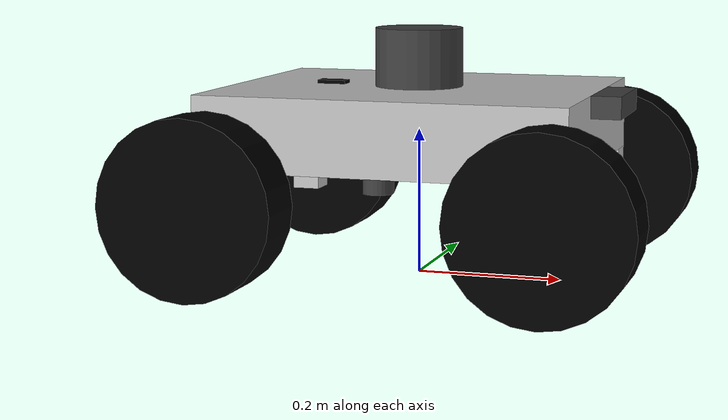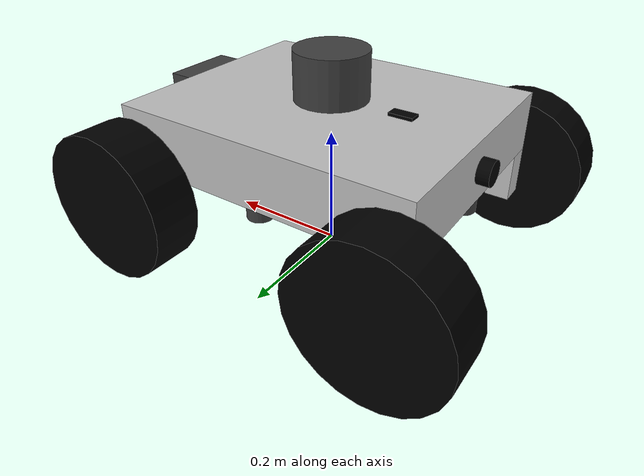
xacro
<?xml version="1.0"?>
<robot xmlns:xacro="http://www.ros.org/wiki/xacro" name="ddbot">

    <xacro:include filename="$(find ddbot_description)/urdf/ddbot.xacro" />

    <link name="base_footprint" />
    <joint name="base_footprint_joint" type="fixed">
        <origin xyz="0.0 0.0 ${base_h/2+wheel_mount_h/2+wheel_r}" rpy="0.0 0.0 0.0" />
        <parent link="base_footprint" />
        <child link="base_link" />
    </joint>

    <xacro:include filename="$(find ddbot_gazebo)/urdf/ddbot.gazebo.xacro" />

</robot>

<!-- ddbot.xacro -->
<robot xmlns:xacro="http://www.ros.org/wiki/xacro" name="ddbot">

    <!-- Link Properties Macros -->
    <xacro:include filename="$(find ddbot_description)/urdf/link_properties.xacro" />

    <!-- Base Link -->
    <xacro:property name="base_m" value="5.0" />
    <xacro:property name="base_l" value="0.5" />
    <xacro:property name="base_w" value="0.4" />
    <xacro:property name="base_h" value="0.1" />

    <link name="base_link">
        <xacro:box_link m="${base_m}" l="${base_l}" w="${base_w}" h="${base_h}"
            material="light_grey" />
    </link>

    <!-- Wheel Mounts -->
    <xacro:property name="wheel_mount_m" value="0.5" />
    <xacro:property name="wheel_mount_l" value="0.04" />
    <xacro:property name="wheel_mount_w" value="0.04" />
    <xacro:property name="wheel_mount_h" value="0.08" />
    <xacro:property name="wheel_mount_dx" value="${base_l/2-wheel_mount_l/2}" />
    <xacro:property name="wheel_mount_dy" value="${base_w/2-wheel_mount_w/2}" />
    <xacro:property name="wheel_mount_dz" value="${base_h/2+wheel_mount_h/2}" />

    <link name="wheel_mount_fl">
        <xacro:box_link m="${wheel_mount_m}" l="${wheel_mount_l}" w="${wheel_mount_w}"
            h="${wheel_mount_h}"
            material="light_grey" />
    </link>
    <joint name="wheel_mount_fl_joint" type="fixed">
        <origin xyz="${wheel_mount_dx} ${wheel_mount_dy} ${-wheel_mount_dz}" rpy="0.0 0.0 0.0" />
        <parent link="base_link" />
        <child link="wheel_mount_fl" />
    </joint>

    <link name="wheel_mount_rl">
        <xacro:box_link m="${wheel_mount_m}" l="${wheel_mount_l}" w="${wheel_mount_w}"
            h="${wheel_mount_h}"
            material="light_grey" />
    </link>
    <joint name="wheel_mount_rl_joint" type="fixed">
        <origin xyz="${-wheel_mount_dx} ${wheel_mount_dy} ${-wheel_mount_dz}" rpy="0.0 0.0 0.0" />
        <parent link="base_link" />
        <child link="wheel_mount_rl" />
    </joint>

    <link name="wheel_mount_rr">
        <xacro:box_link m="${wheel_mount_m}" l="${wheel_mount_l}" w="${wheel_mount_w}"
            h="${wheel_mount_h}"
            material="light_grey" />
    </link>
    <joint name="wheel_mount_rr_joint" type="fixed">
        <origin xyz="${-wheel_mount_dx} ${-wheel_mount_dy} ${-wheel_mount_dz}" rpy="0.0 0.0 0.0" />
        <parent link="base_link" />
        <child link="wheel_mount_rr" />
    </joint>

    <link name="wheel_mount_fr">
        <xacro:box_link m="${wheel_mount_m}" l="${wheel_mount_l}" w="${wheel_mount_w}"
            h="${wheel_mount_h}"
            material="light_grey" />
    </link>
    <joint name="wheel_mount_fr_joint" type="fixed">
        <origin xyz="${wheel_mount_dx} ${-wheel_mount_dy} ${-wheel_mount_dz}" rpy="0.0 0.0 0.0" />
        <parent link="base_link" />
        <child link="wheel_mount_fr" />
    </joint>

    <!-- Wheels -->
    <xacro:property name="wheel_m" value="0.4" />
    <xacro:property name="wheel_r" value="0.12" />
    <xacro:property name="wheel_l" value="0.08" />

    <link name="wheel_fl">
        <xacro:cylinder_link m="${wheel_m}" r="${wheel_r}" l="${wheel_l}" material="black" />
    </link>
    <joint name="wheel_fl_joint" type="continuous">
        <origin xyz="0.0 ${wheel_mount_w/2+wheel_l/2} 0.0" rpy="${-pi/2} 0.0 0.0" />
        <parent link="wheel_mount_fl" />
        <child link="wheel_fl" />
        <axis xyz="0.0 0.0 1.0" />
    </joint>

    <link name="wheel_rl">
        <xacro:cylinder_link m="${wheel_m}" r="${wheel_r}" l="${wheel_l}" material="black" />
    </link>
    <joint name="wheel_rl_joint" type="continuous">
        <origin xyz="0.0 ${wheel_mount_w/2+wheel_l/2} 0.0" rpy="${-pi/2} 0.0 0.0" />
        <parent link="wheel_mount_rl" />
        <child link="wheel_rl" />
        <axis xyz="0.0 0.0 1.0" />
    </joint>

    <link name="wheel_rr">
        <xacro:cylinder_link m="${wheel_m}" r="${wheel_r}" l="${wheel_l}" material="black" />
    </link>
    <joint name="wheel_rr_joint" type="continuous">
        <origin xyz="0.0 -${wheel_mount_w/2+wheel_l/2} 0.0" rpy="${-pi/2} 0.0 0.0" />
        <parent link="wheel_mount_rr" />
        <child link="wheel_rr" />
        <axis xyz="0.0 0.0 1.0" />
    </joint>

    <link name="wheel_fr">
        <xacro:cylinder_link m="${wheel_m}" r="${wheel_r}" l="${wheel_l}" material="black" />
    </link>
    <joint name="wheel_fr_joint" type="continuous">
        <origin xyz="0.0 -${wheel_mount_w/2+wheel_l/2} 0.0" rpy="${-pi/2} 0.0 0.0" />
        <parent link="wheel_mount_fr" />
        <child link="wheel_fr" />
        <axis xyz="0.0 0.0 1.0" />
    </joint>

    <!-- Lidar -->
    <xacro:property name="lidar_m" value="0.4" />
    <xacro:property name="lidar_r" value="0.06" />
    <xacro:property name="lidar_l" value="0.08" />

    <link name="lidar">
        <xacro:cylinder_link m="${lidar_m}" r="${lidar_r}" l="${lidar_l}" material="dark_grey" />
    </link>
    <joint name="lidar_joint" type="fixed">
        <origin xyz="0.0 0.0 ${base_h/2+lidar_l/2}" rpy="0.0 0.0 0.0" />
        <parent link="base_link" />
        <child link="lidar" />
    </joint>

    <!-- RGBD Camera -->
    <xacro:property name="rgbd_camera_m" value="0.25" />
    <xacro:property name="rgbd_camera_l" value="0.04" />
    <xacro:property name="rgbd_camera_w" value="0.12" />
    <xacro:property name="rgbd_camera_h" value="0.03" />

    <link name="rgbd_camera">
        <xacro:box_link m="${rgbd_camera_m}" l="${rgbd_camera_l}" w="${rgbd_camera_w}"
            h="${rgbd_camera_h}"
            material="dark_grey" />
    </link>
    <joint name="rgbd_camera_joint" type="fixed">
        <origin xyz="${base_l/2+rgbd_camera_l/2} 0.0 ${base_h/2-rgbd_camera_h/2}" rpy="0.0 0.0 0.0" />
        <parent link="base_link" />
        <child link="rgbd_camera" />
    </joint>

    <link name="rgbd_camera_frame" />
    <joint name="rgbd_camera_frame_joint" type="fixed">
        <origin xyz="${rgbd_camera_l/2} 0.0 0.0" rpy="0.0 0.0 0.0" />
        <parent link="rgbd_camera" />
        <child link="rgbd_camera_frame" />
    </joint>

    <!-- GPS Tracker -->
    <xacro:property name="gps_tracker_m" value="0.1" />
    <xacro:property name="gps_tracker_r" value="0.02" />
    <xacro:property name="gps_tracker_l" value="0.02" />

    <link name="gps_tracker">
        <xacro:cylinder_link m="${gps_tracker_m}" r="${gps_tracker_r}" l="${gps_tracker_l}"
            material="black" />
    </link>
    <joint name="gps_tracker_joint" type="fixed">
        <origin xyz="-${base_l/2+gps_tracker_l/2} 0.0 0.0" rpy="0.0 -${pi/2} 0.0" />
        <parent link="base_link" />
        <child link="gps_tracker" />
    </joint>

    <!-- Ultrasonic Sensors -->
    <xacro:property name="us_sensor_m" value="0.05" />
    <xacro:property name="us_sensor_r" value="0.02" />
    <xacro:property name="us_sensor_l" value="0.02" />

    <link name="us_sensor_front">
        <xacro:cylinder_link m="${us_sensor_m}" r="${us_sensor_r}" l="${us_sensor_l}"
            material="dark_grey" />
    </link>
    <joint name="us_sensor_front_joint" type="fixed">
        <origin xyz="${base_l/2-us_sensor_r} 0.0 -${base_h/2+us_sensor_l/2}" rpy="0.0 0.0 0.0" />
        <parent link="base_link" />
        <child link="us_sensor_front" />
    </joint>

    <link name="us_sensor_left">
        <xacro:cylinder_link m="${us_sensor_m}" r="${us_sensor_r}" l="${us_sensor_l}"
            material="dark_grey" />
    </link>
    <joint name="us_sensor_left_joint" type="fixed">
        <origin xyz="0.0 ${base_w/2-us_sensor_r} -${base_h/2+us_sensor_l/2}" rpy="0.0 0.0 ${pi/2}" />
        <parent link="base_link" />
        <child link="us_sensor_left" />
    </joint>

    <link name="us_sensor_rear">
        <xacro:cylinder_link m="${us_sensor_m}" r="${us_sensor_r}" l="${us_sensor_l}"
            material="dark_grey" />
    </link>
    <joint name="us_sensor_rear_joint" type="fixed">
        <origin xyz="-${base_l/2-us_sensor_r} 0.0 -${base_h/2+us_sensor_l/2}" rpy="0.0 0.0 ${pi}" />
        <parent link="base_link" />
        <child link="us_sensor_rear" />
    </joint>

    <link name="us_sensor_right">
        <xacro:cylinder_link m="${us_sensor_m}" r="${us_sensor_r}" l="${us_sensor_l}"
            material="dark_grey" />
    </link>
    <joint name="us_sensor_right_joint" type="fixed">
        <origin xyz="0.0 -${base_w/2-us_sensor_r} -${base_h/2+us_sensor_l/2}" rpy="0.0 0.0 -${pi/2}" />
        <parent link="base_link" />
        <child link="us_sensor_right" />
    </joint>

    <!-- IMU Sensor -->
    <xacro:property name="imu_m" value="0.05" />
    <xacro:property name="imu_l" value="0.04" />
    <xacro:property name="imu_w" value="0.02" />
    <xacro:property name="imu_h" value="0.005" />

    <link name="imu">
        <xacro:box_link m="${imu_m}" l="${imu_l}" w="${imu_w}" h="${imu_h}" material="black" />
    </link>
    <joint name="imu_joint" type="fixed">
        <origin xyz="-${base_l/4} 0.0 ${base_h/2+imu_h/2}" rpy="0.0 0.0 0.0" />
        <parent link="base_link" />
        <child link="imu" />
    </joint>

</robot>

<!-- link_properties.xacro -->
<robot xmlns:xacro="http://www.ros.org/wiki/xacro">

    <!-- Materials -->
    <xacro:include filename="$(find ddbot_description)/urdf/materials.xacro" />

    <!-- Box Link Properties -->
    <xacro:macro name="__box_property" params="size">
        <origin xyz="0.0 0.0 0.0" rpy="0.0 0.0 0.0" />

        <geometry>
            <box size="${size}" />
        </geometry>
    </xacro:macro>

    <xacro:macro name="box_link" params="m l w h material='grey'">
        <collision>
            <xacro:__box_property size="${l} ${w} ${h}" />
        </collision>

        <visual>
            <xacro:__box_property size="${l} ${w} ${h}" />
            <material name="${material}" />
        </visual>

        <inertial>
            <origin xyz="0.0 0.0 0.0" rpy="0.0 0.0 0.0" />
            <mass value="${m}" />
            <inertia
                ixx="${m * (w * w + h * h) / 12}" ixy="0" ixz="0"
                iyy="${m * (l * l + h * h) / 12}"
                iyz="0" izz="${m * (w * w + l * l) / 12}" />
        </inertial>
    </xacro:macro>

    <!-- Cylinder Link Properties -->
    <xacro:macro name="__cylinder_property" params="r l">
        <origin xyz="0.0 0.0 0.0" rpy="0.0 0.0 0.0" />

        <geometry>
            <cylinder radius="${r}" length="${l}" />
        </geometry>
    </xacro:macro>

    <xacro:macro name="cylinder_link" params="m r l material='grey'">
        <collision>
            <xacro:__cylinder_property r="${r}" l="${l}" />
        </collision>

        <visual>
            <xacro:__cylinder_property r="${r}" l="${l}" />
            <material name="${material}" />
        </visual>

        <inertial>
            <origin xyz="0.0 0.0 0.0" rpy="0.0 0.0 0.0" />
            <mass value="${m}" />
            <inertia ixx="${m * (3 * r * r + l * l) / 12}" ixy="0" ixz="0"
                iyy="${m * (3 * r * r + l * l) / 12}" iyz="0" izz="${m * r * r / 2}" />
        </inertial>
    </xacro:macro>

    <!-- Sphere Link Properties -->
    <xacro:macro name="__sphere_property" params="r">
        <origin xyz="0.0 0.0 0.0" rpy="0.0 0.0 0.0" />

        <geometry>
            <sphere radius="${r}" />
        </geometry>
    </xacro:macro>

    <xacro:macro name="sphere_link" params="m r material='grey'">
        <collision>
            <xacro:__sphere_property radius="${r}" />
        </collision>

        <visual>
            <xacro:__sphere_property radius="${r}" />
            <material name="${material}" />
        </visual>

        <inertial>
            <origin xyz="0.0 0.0 0.0" rpy="0.0 0.0 0.0" />
            <mass value="${m}" />
            <inertia ixx="${2 * m * r * r / 5}" ixy="0" ixz="0" iyy="${2 * m * r * r / 5}" iyz="0"
                izz="${2 * m * r * r / 5}" />
        </inertial>
    </xacro:macro>

</robot>

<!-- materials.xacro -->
<robot xmlns:xacro="http://www.ros.org/wiki/xacro">

    <!-- MATERIALS -->

    <material name="black">
        <color rgba="0.0 0.0 0.0 1.0" />
    </material>

    <material name="dark_grey">
        <color rgba="0.25 0.25 0.25 1.0" />
    </material>

    <material name="grey">
        <color rgba="0.5 0.5 0.5 1.0" />
    </material>

    <material name="light_grey">
        <color rgba="0.75 0.75 0.75 1.0" />
    </material>

    <material name="white">
        <color rgba="1.0 1.0 1.0 1.0" />
    </material>

</robot>
